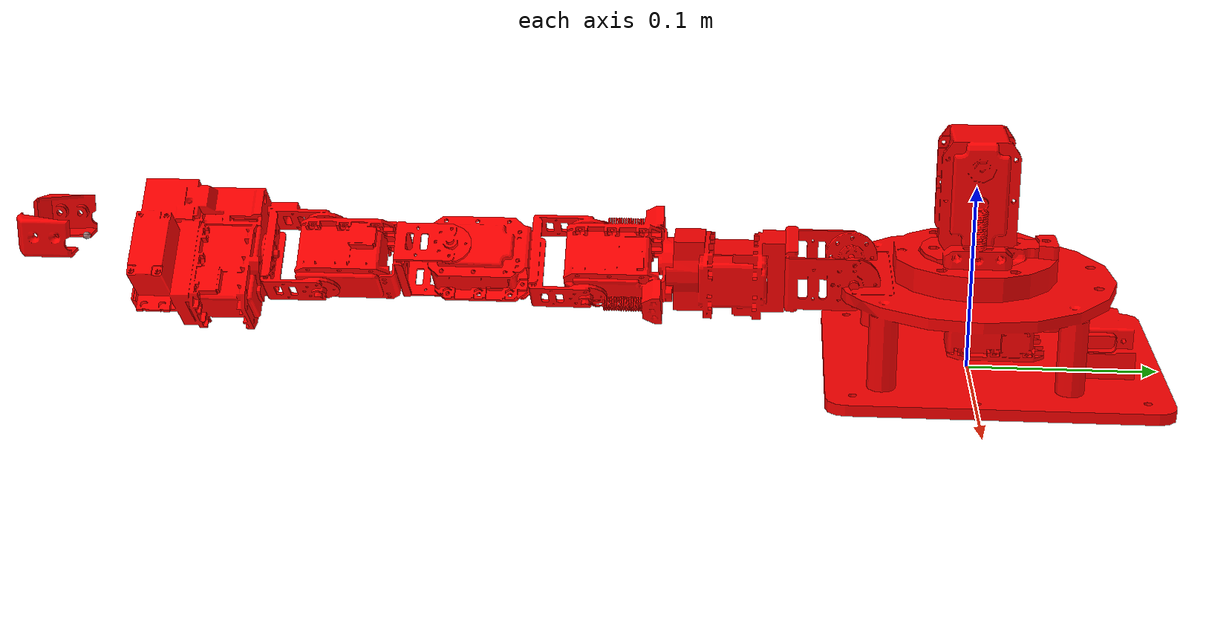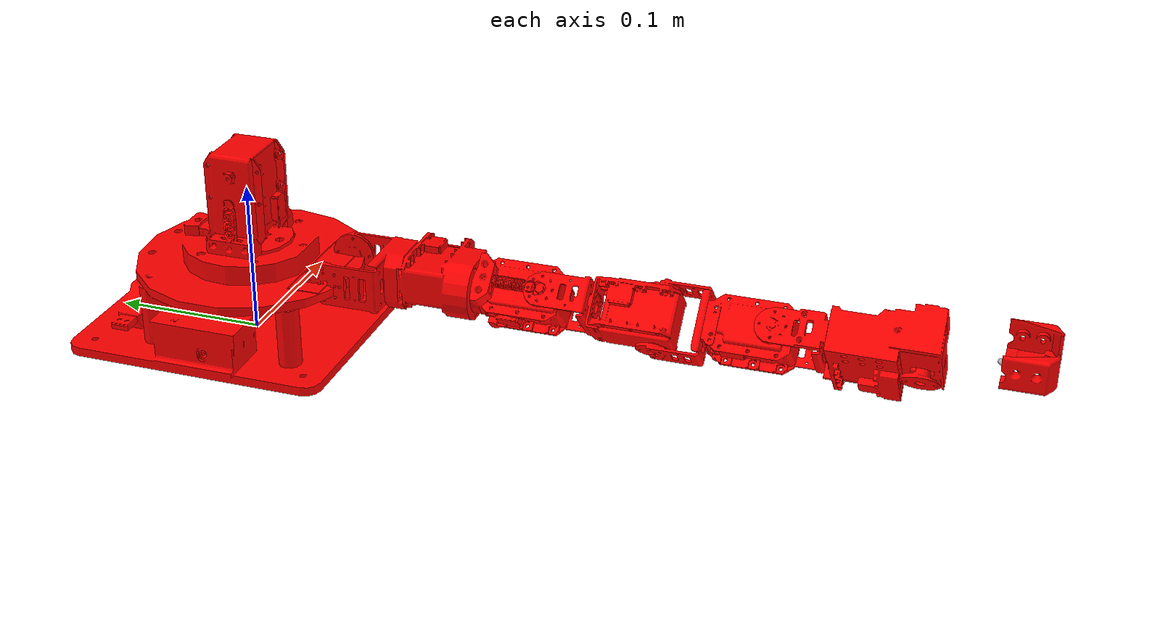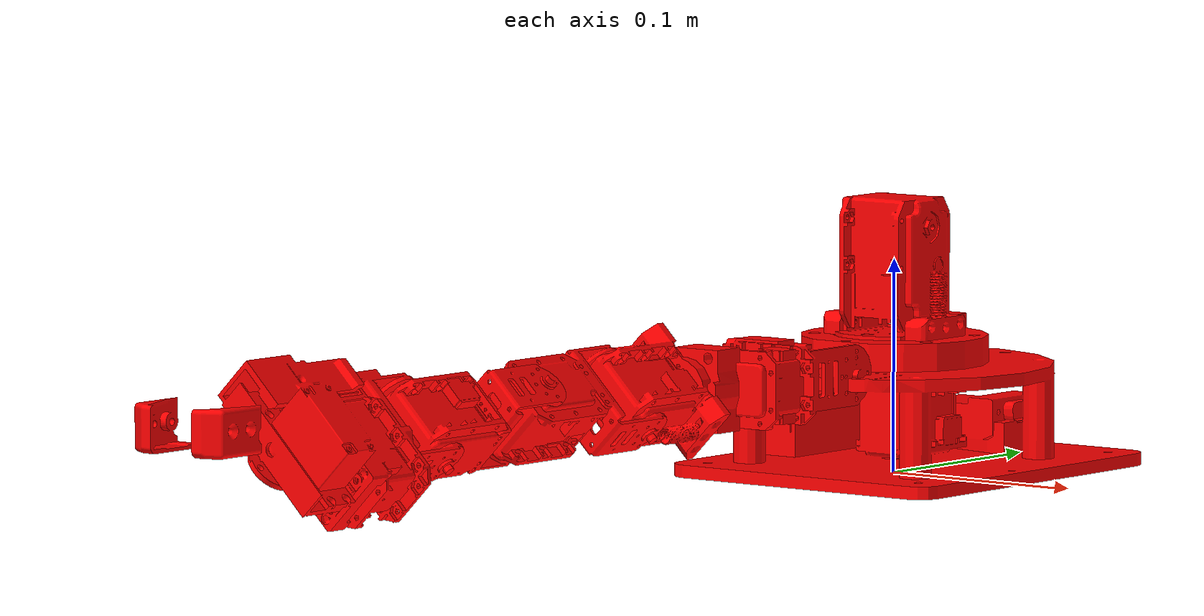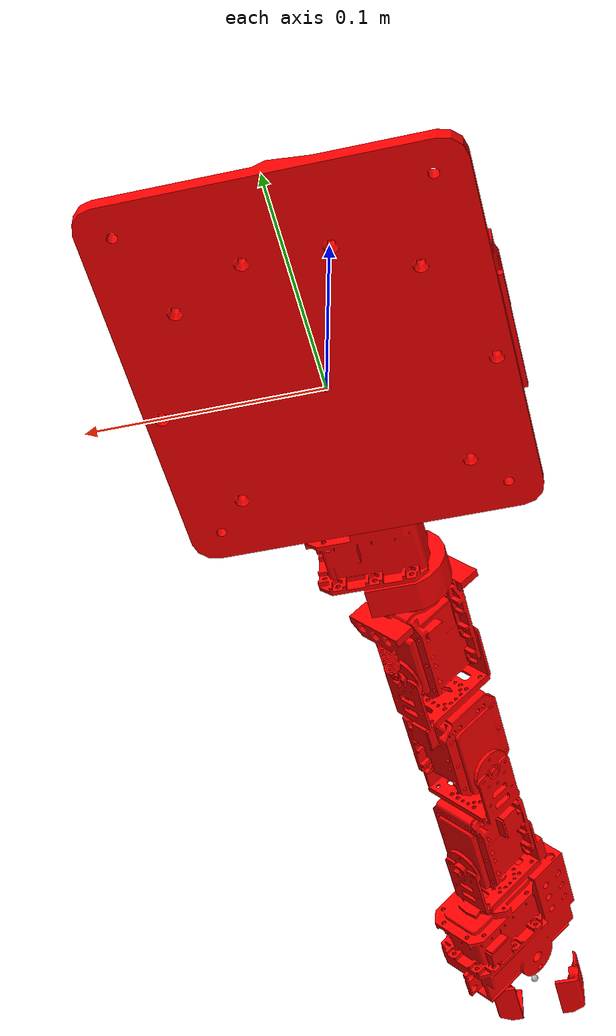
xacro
<?xml version="1.0"?>
<robot xmlns:xacro="http://www.ros.org/wiki/xacro" name="cyton_gamma_300">
  <xacro:include filename="$(find cyton_gamma_300_description)/cyton_gamma_300_macros.urdf.xacro" />

  <xacro:base_footprint prefix="" />
  <xacro:cyton_gamma_300 prefix="" virtual_ee="true" />
</robot>

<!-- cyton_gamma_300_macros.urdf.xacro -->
<robot xmlns:xacro="http://www.ros.org/wiki/xacro" name="cyton_gamma_300">

    <!-- Initial footprint motor used here -->
    <xacro:macro name="base_footprint" params="prefix">
        <link name="base_footprint">
            <visual>
                <origin xyz="0 0 0" rpy="0 0 0"/>
                <geometry>
                    <sphere radius="0.001" />
                </geometry>
                <material name="white">
                    <color rgba="1 1 1 1"/>
                </material>
            </visual>
        </link>

        <joint name="base_joint" type="fixed">
            <parent link="base_footprint" />
            <child link="${prefix}base_link" />
            <origin xyz="0.0 0.0 0.0" rpy="0 0 0" />
        </joint>
    </xacro:macro>

    <xacro:macro name="cyton_gamma_300" params="prefix virtual_ee">
        <!-- Base of robot here -->
        <link name="${prefix}base_link">
            <visual>
                <origin xyz="0 0 0" rpy="0 0 0"/>
                <geometry>
                    <mesh filename="package://cyton_gamma_300_description/meshes/gamma_base.dae"/>
                </geometry>
            </visual>
            <collision>
                <origin xyz="0 0.0115 0.047"/>
                <geometry>
                    <box size="0.154 0.177 0.094"/>
                </geometry>
            </collision>
        </link>

        <!-- First motor located here -->
        <joint name="${prefix}shoulder_roll_joint" type="revolute">
            <parent link="${prefix}base_link" />
            <child link="${prefix}shoulder_roll" />
            <origin xyz="0 0 0.05315" rpy="1.5708 0 0" />
            <limit lower="-2.618" upper="2.618" effort="100.0" velocity="1.0" />
            <axis xyz="0 0 1" />
        </joint>

        <link name="${prefix}shoulder_roll">
            <visual>
                <origin xyz="0 0 0" rpy="0 0 0"/>
                <geometry>
                    <mesh filename="package://cyton_gamma_300_description/meshes/Shoulder_Roll.dae"/>
                </geometry>
            </visual>
            <collision>
                <origin xyz="0.0 0.069 0.0587"/>
                <geometry>
                    <box size="0.09829 0.18143 0.08392"/>
                </geometry>
            </collision>
        </link>

        <!-- Second motor located here -->
        <joint name="${prefix}shoulder_pitch_joint" type="revolute">
            <parent link="${prefix}shoulder_roll" />
            <child link="${prefix}shoulder_pitch" />
            <origin xyz="0.028 0 0.063" rpy="0 0 0" />
            <limit lower="-1.8326" upper="1.8326" effort="100.0" velocity="1.0" />
            <axis xyz="1 0 0" />
        </joint>

        <link name="${prefix}shoulder_pitch">
            <visual>
                <origin xyz="0 0 0" rpy="0 1.5708 0" />
                <geometry>
                    <mesh filename="package://cyton_gamma_300_description/meshes/Shoulder_Pitch.dae"/>
                </geometry>
            </visual>
            <collision>
                <origin xyz="-0.001 0.064 0.1745"/>
                <geometry>
                    <box size="0.0709 0.19363 0.083"/>
                </geometry>
            </collision>
        </link>

        <!-- Third motor located here -->
        <joint name="${prefix}elbow_roll_joint" type="revolute">
            <parent link="${prefix}shoulder_pitch" />
            <child link="${prefix}elbow_roll" />
            <origin xyz="-0.028 0 0.089" rpy="0 0 0" />
            <limit lower="-1.8326" upper="1.8326" effort="100.0" velocity="1.0" />
            <axis xyz="0 -1 0" />
        </joint>

        <link name="${prefix}elbow_roll">
            <visual>
                <origin xyz="0 0 0.0" rpy="0 0 0" />
                <geometry>
                    <mesh filename="package://cyton_gamma_300_description/meshes/Elbow_Roll.dae"/>
                </geometry>
            </visual>
            <collision>
                <origin xyz="-0.0225 0.039 0.3068"/>
                <geometry>
                    <box size="0.0717 0.1846 0.0756"/>
                </geometry>
            </collision>
        </link>

        <!-- Third motor located here -->
        <joint name="${prefix}elbow_pitch_joint" type="revolute">
            <parent link="${prefix}elbow_roll" />
            <child link="${prefix}elbow_pitch" />
            <origin xyz="0.018 -0.018 0.052" rpy="0 0 0" />
            <limit lower="-1.8326" upper="1.8326" effort="100.0" velocity="1.0" />
            <axis xyz="1 0 0" />
        </joint>

        <link name="${prefix}elbow_pitch">
            <visual>
                <!-- Not sure if this is the correct orientation. -->
                <origin xyz="0 0 0" rpy="1.5708 0 0.7854" />
                <geometry>
                    <mesh filename="package://cyton_gamma_300_description/meshes/Elbow_Pitch.dae"/>
                </geometry>
            </visual>
            <collision>
                <origin xyz="0.0346 0.0461 0.4228"/>
                <geometry>
                    <box size="0.0549 0.1557 0.076"/>
                </geometry>
            </collision>
        </link>

        <!-- Fourth motor located here -->
        <joint name="${prefix}elbow_yaw_joint" type="revolute">
            <parent link="${prefix}elbow_pitch" />
            <child link="${prefix}elbow_yaw" />
            <origin xyz="-0.018 0.018 0.072" rpy="0 0 0" />
            <limit lower="-1.8326" upper="1.8326" effort="100.0" velocity="1.0" />
            <axis xyz="0 -1 0" />
        </joint>

        <link name="${prefix}elbow_yaw">
            <visual>
                <origin xyz="0 0 0" rpy="1.5708 0 2.3562" />
                <geometry>
                    <mesh filename="package://cyton_gamma_300_description/meshes/Elbow_Yaw.dae"/>
                </geometry>
            </visual>
            <collision>
                <origin xyz="0.0172 0.0209 0.516"/>
                <geometry>
                    <box size="0.0535 0.1160 0.0402"/>
                </geometry>
            </collision>
        </link>

        <!-- Fifth motor located here -->
        <joint name="${prefix}wrist_pitch_joint" type="revolute">
            <parent link="${prefix}elbow_yaw" />
            <child link="${prefix}wrist_pitch" />
            <origin xyz="0.018 -0.018 0.0718" rpy="0 0 0" />
            <limit lower="-1.8326" upper="1.8326" effort="100.0" velocity="1.0" />
            <axis xyz="1 0 0" />
        </joint>

        <link name="${prefix}wrist_pitch">
            <visual>
                <origin xyz="0 0 0" rpy="1.5708 0 0.7854" />
                <geometry>
                    <mesh filename="package://cyton_gamma_300_description/meshes/Wrist_Pitch.dae"/>
                </geometry>
            </visual>
            <collision>
                <origin xyz="0.0257 0.0118 0.5617"/>
                <geometry>
                    <box size="0.026 0.0435 0.05185"/>
                </geometry>
            </collision>
        </link>

        <!-- Sixth motor located here -->
        <joint name="${prefix}wrist_roll_joint" type="revolute">
            <parent link="${prefix}wrist_pitch" />
            <child link="${prefix}wrist_roll" />
            <origin xyz="-0.018 0.018 0.051425" rpy="0 0 0" />
            <limit lower="-2.61799" upper="2.61799" effort="100.0" velocity="1.0" />
            <axis xyz="0 0 1" />
        </joint>

        <link name="${prefix}wrist_roll">
            <visual>
                <origin xyz="0 0 0" rpy="3.1416 0 -2.3562" />
                <geometry>
                    <mesh filename="package://cyton_gamma_300_description/meshes/Wrist_Roll.dae"/>
                </geometry>
            </visual>
            <collision>
                <origin xyz="-0.0063 -0.0014 0.6102"/>
                <geometry>
                    <box size="0.0518 0.0723 0.1004"/>
                </geometry>
            </collision>
        </link>

        <!-- Seventh motor located here -->
        <joint name="${prefix}gripper_joint" type="prismatic">
            <parent link="${prefix}wrist_roll" />
            <child link="${prefix}gripper_finger1" />
            <origin xyz="-0.01331 0.00485 0.077225" rpy="0 0 0" />
            <limit lower="-0.008" upper="0.008" effort="100.0" velocity="1.0" />
            <axis xyz="1 0 0" />
        </joint>

        <link name="${prefix}gripper_finger1">
            <visual>
                <origin xyz="0 0 0" rpy="0 0 0" />
                <geometry>
                    <mesh filename="package://cyton_gamma_300_description/meshes/Gripper_Finger1.dae"/>
                </geometry>
            </visual>
            <collision>
                <origin xyz="-0.0167 0.0172 0.7254"/>
                <geometry>
                    <box size="0.015 0.0229 0.0475"/>
                </geometry>
            </collision>
        </link>

        <!-- Eighth motor located here -->
        <joint name="${prefix}gripper_joint2" type="prismatic">
            <parent link="${prefix}wrist_roll" />
            <child link="${prefix}gripper_finger2" />
            <origin xyz="0.0098 0.00485 0.077225" rpy="0 0 0" />
            <limit lower="-0.008" upper="0.008" effort="100.0" velocity="1.0" />
            <mimic joint="${prefix}gripper_joint" multiplier="-1"/>
            <axis xyz="1 0 0" />
        </joint>

        <link name="${prefix}gripper_finger2">
            <visual>
                <origin xyz="0 0 0" rpy="0 0 0" />
                <geometry>
                    <mesh filename="package://cyton_gamma_300_description/meshes/Gripper_Finger2.dae"/>
                </geometry>
            </visual>
            <collision>
                <origin xyz="0.0132 0.0172 0.7254"/>
                <geometry>
                    <box size="0.015 0.0229 0.0475"/>
                </geometry>
            </collision>
        </link>

        <xacro:if value="${virtual_ee}"> <!-- virtual end-effector -->
            <joint name="${prefix}virtual_endeffector_joint" type="fixed">
                <parent link="${prefix}wrist_roll" />
                <child link="${prefix}virtual_endeffector" />
                <origin xyz="-0.002316 0.0079 0.079425" rpy="0 0 0" />
            </joint>

            <link name="${prefix}virtual_endeffector">
                <visual>
                    <origin xyz="0 0 0" rpy="0 0 0" />
                    <geometry>
                        <sphere radius="0.002" />
                    </geometry>
                    <material name="grey">
                        <color rgba="0.7 0.7 0.7 0.8" />
                    </material>
                </visual>
            </link>
        </xacro:if>
    </xacro:macro>

</robot>
